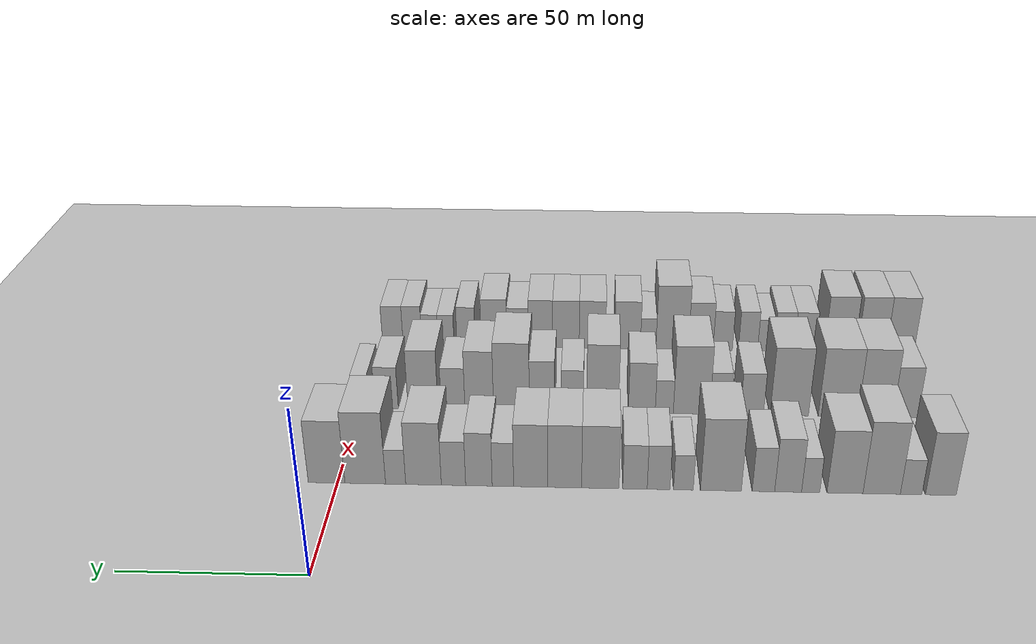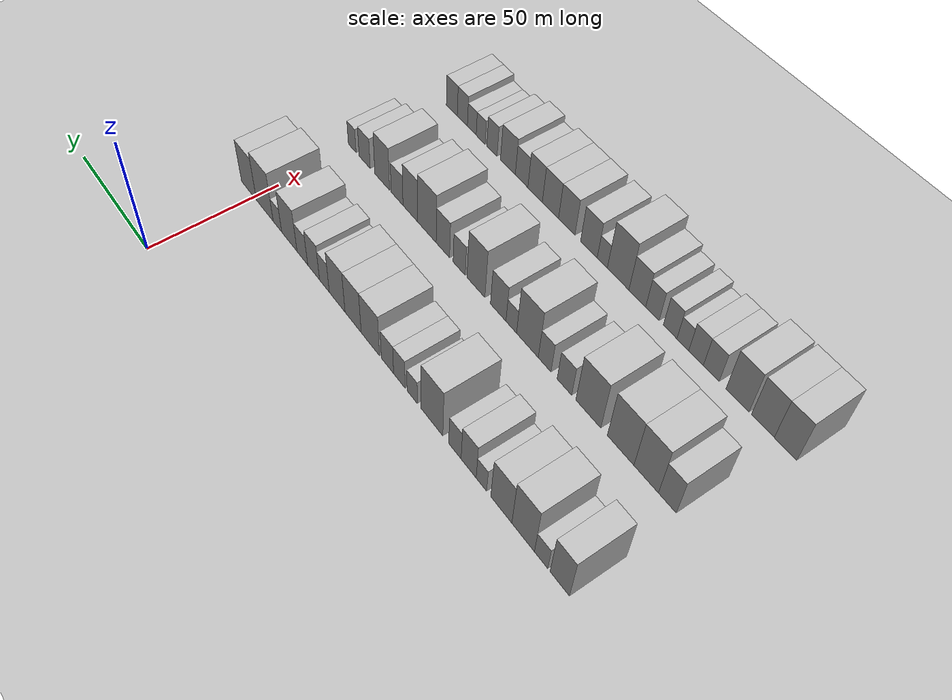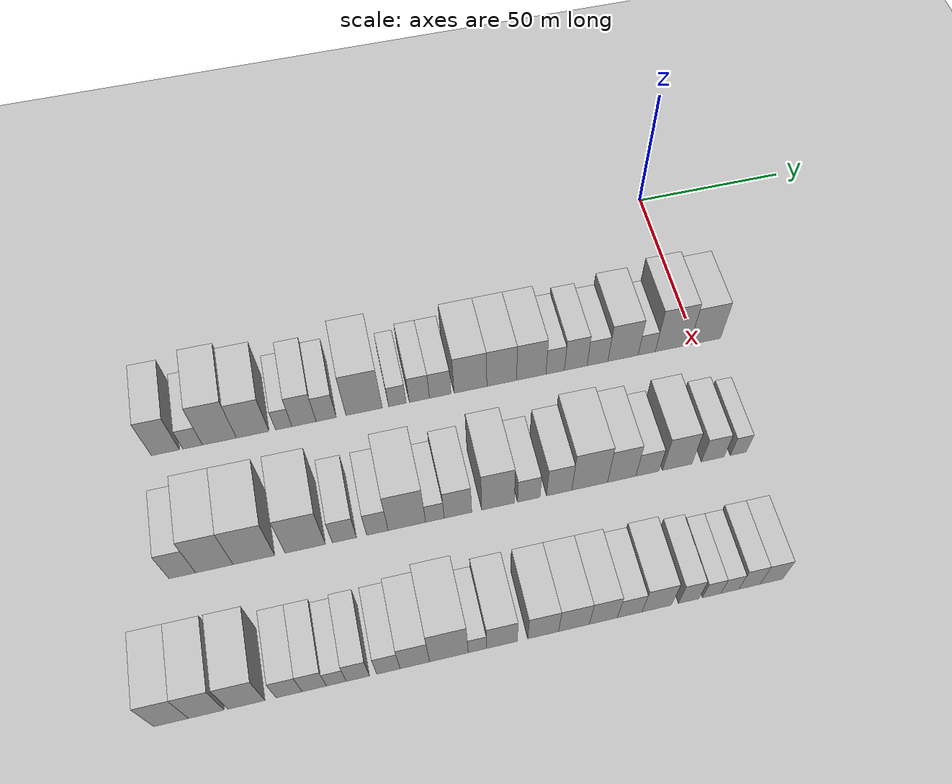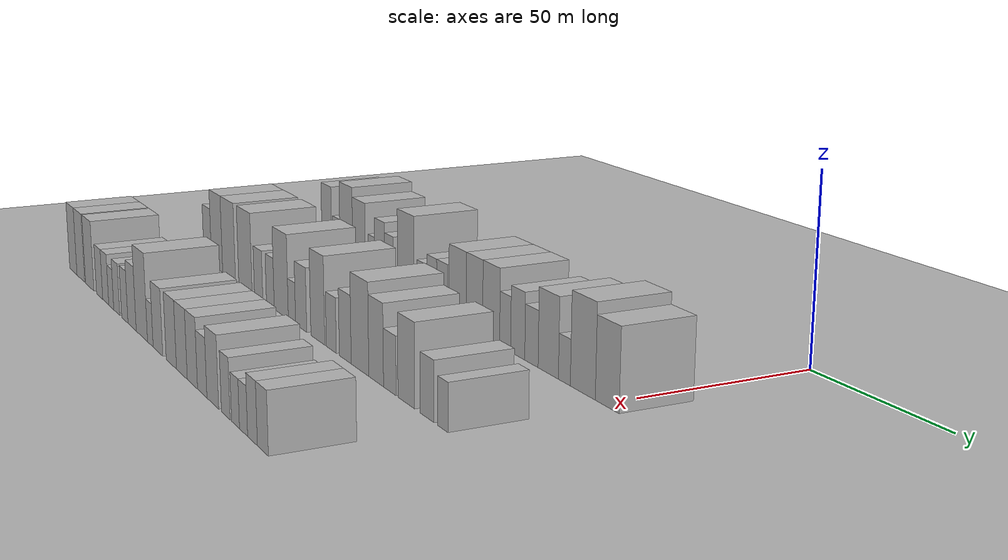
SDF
<sdf version="1.6">
 <world name="default">
  <include><name>ground_plane_1</name><uri>model://HANNAS_ground_plane</uri></include>
  <include>
   <name>ground_plane_2</name>
   <uri>model://HANNAS_ground_plane</uri>
   <pose>100 0 0  0 0 0</pose>
  </include>
  <model name="building_21">
   <static>1</static>
   <pose>50.0000 -168.3030 0 0.000000 0.000000 0.000000</pose>
   <link name="link">
    <pose>0 0 10.50 0 0 0</pose>
    <collision name="collision"><geometry><box><size>20.0000 8.4436 21.0000</size></box></geometry></collision>
    <visual name="visual">
     <cast_shadows>0</cast_shadows>
     <geometry><box><size>20.0000 8.4436 21.0000</size></box></geometry>
     <material>
      <script>
       <uri>model://HANNAS_wall/materials/scripts</uri>
       <uri>model://HANNAS_wall/materials/textures</uri>
       <name>vrc/HANNAS_wall</name>
      </script>
     </material>
    </visual>
   </link>
  </model>
  <model name="building_22">
   <static>1</static>
   <pose>50.0000 -160.1212 0 0.000000 0.000000 0.000000</pose>
   <link name="link">
    <pose>0 0 6.00 0 0 0</pose>
    <collision name="collision"><geometry><box><size>20.0000 5.9200 12.0000</size></box></geometry></collision>
    <visual name="visual">
     <cast_shadows>0</cast_shadows>
     <geometry><box><size>20.0000 5.9200 12.0000</size></box></geometry>
     <material>
      <script>
       <uri>model://HANNAS_wall/materials/scripts</uri>
       <uri>model://HANNAS_wall/materials/textures</uri>
       <name>vrc/HANNAS_wall</name>
      </script>
     </material>
    </visual>
   </link>
  </model>
  <model name="building_23">
   <static>1</static>
   <pose>50.0000 -152.0052 0 0.000000 0.000000 0.000000</pose>
   <link name="link">
    <pose>0 0 12.00 0 0 0</pose>
    <collision name="collision"><geometry><box><size>20.0000 10.3118 24.0000</size></box></geometry></collision>
    <visual name="visual">
     <cast_shadows>0</cast_shadows>
     <geometry><box><size>20.0000 10.3118 24.0000</size></box></geometry>
     <material>
      <script>
       <uri>model://HANNAS_wall/materials/scripts</uri>
       <uri>model://HANNAS_wall/materials/textures</uri>
       <name>vrc/HANNAS_wall</name>
      </script>
     </material>
    </visual>
   </link>
  </model>
  <model name="building_24">
   <static>1</static>
   <pose>50.0000 -141.8778 0 0.000000 0.000000 0.000000</pose>
   <link name="link">
    <pose>0 0 10.50 0 0 0</pose>
    <collision name="collision"><geometry><box><size>20.0000 9.9431 21.0000</size></box></geometry></collision>
    <visual name="visual">
     <cast_shadows>0</cast_shadows>
     <geometry><box><size>20.0000 9.9431 21.0000</size></box></geometry>
     <material>
      <script>
       <uri>model://HANNAS_wall/materials/scripts</uri>
       <uri>model://HANNAS_wall/materials/textures</uri>
       <name>vrc/HANNAS_wall</name>
      </script>
     </material>
    </visual>
   </link>
  </model>
  <model name="building_25">
   <static>1</static>
   <pose>50.0000 -132.3849 0 0.000000 0.000000 0.000000</pose>
   <link name="link">
    <pose>0 0 6.00 0 0 0</pose>
    <collision name="collision"><geometry><box><size>20.0000 5.0427 12.0000</size></box></geometry></collision>
    <visual name="visual">
     <cast_shadows>0</cast_shadows>
     <geometry><box><size>20.0000 5.0427 12.0000</size></box></geometry>
     <material>
      <script>
       <uri>model://HANNAS_wall/materials/scripts</uri>
       <uri>model://HANNAS_wall/materials/textures</uri>
       <name>vrc/HANNAS_wall</name>
      </script>
     </material>
    </visual>
   </link>
  </model>
  <model name="building_26">
   <static>1</static>
   <pose>50.0000 -126.1405 0 0.000000 0.000000 0.000000</pose>
   <link name="link">
    <pose>0 0 9.00 0 0 0</pose>
    <collision name="collision"><geometry><box><size>20.0000 7.4460 18.0000</size></box></geometry></collision>
    <visual name="visual">
     <cast_shadows>0</cast_shadows>
     <geometry><box><size>20.0000 7.4460 18.0000</size></box></geometry>
     <material>
      <script>
       <uri>model://HANNAS_wall/materials/scripts</uri>
       <uri>model://HANNAS_wall/materials/textures</uri>
       <name>vrc/HANNAS_wall</name>
      </script>
     </material>
    </visual>
   </link>
  </model>
  <model name="building_27">
   <static>1</static>
   <pose>50.0000 -119.2987 0 0.000000 0.000000 0.000000</pose>
   <link name="link">
    <pose>0 0 7.50 0 0 0</pose>
    <collision name="collision"><geometry><box><size>20.0000 6.2375 15.0000</size></box></geometry></collision>
    <visual name="visual">
     <cast_shadows>0</cast_shadows>
     <geometry><box><size>20.0000 6.2375 15.0000</size></box></geometry>
     <material>
      <script>
       <uri>model://HANNAS_wall/materials/scripts</uri>
       <uri>model://HANNAS_wall/materials/textures</uri>
       <name>vrc/HANNAS_wall</name>
      </script>
     </material>
    </visual>
   </link>
  </model>
  <model name="building_28">
   <static>1</static>
   <pose>50.0000 -107.4971 0 0.000000 0.000000 0.000000</pose>
   <link name="link">
    <pose>0 0 12.00 0 0 0</pose>
    <collision name="collision"><geometry><box><size>20.0000 11.3657 24.0000</size></box></geometry></collision>
    <visual name="visual">
     <cast_shadows>0</cast_shadows>
     <geometry><box><size>20.0000 11.3657 24.0000</size></box></geometry>
     <material>
      <script>
       <uri>model://HANNAS_wall/materials/scripts</uri>
       <uri>model://HANNAS_wall/materials/textures</uri>
       <name>vrc/HANNAS_wall</name>
      </script>
     </material>
    </visual>
   </link>
  </model>
  <model name="building_29">
   <static>1</static>
   <pose>50.0000 -97.0648 0 0.000000 0.000000 0.000000</pose>
   <link name="link">
    <pose>0 0 6.00 0 0 0</pose>
    <collision name="collision"><geometry><box><size>20.0000 5.4989 12.0000</size></box></geometry></collision>
    <visual name="visual">
     <cast_shadows>0</cast_shadows>
     <geometry><box><size>20.0000 5.4989 12.0000</size></box></geometry>
     <material>
      <script>
       <uri>model://HANNAS_wall/materials/scripts</uri>
       <uri>model://HANNAS_wall/materials/textures</uri>
       <name>vrc/HANNAS_wall</name>
      </script>
     </material>
    </visual>
   </link>
  </model>
  <model name="building_30">
   <static>1</static>
   <pose>50.0000 -90.1429 0 0.000000 0.000000 0.000000</pose>
   <link name="link">
    <pose>0 0 7.50 0 0 0</pose>
    <collision name="collision"><geometry><box><size>20.0000 6.3448 15.0000</size></box></geometry></collision>
    <visual name="visual">
     <cast_shadows>0</cast_shadows>
     <geometry><box><size>20.0000 6.3448 15.0000</size></box></geometry>
     <material>
      <script>
       <uri>model://HANNAS_wall/materials/scripts</uri>
       <uri>model://HANNAS_wall/materials/textures</uri>
       <name>vrc/HANNAS_wall</name>
      </script>
     </material>
    </visual>
   </link>
  </model>
  <model name="building_31">
   <static>1</static>
   <pose>50.0000 -83.5519 0 0.000000 0.000000 0.000000</pose>
   <link name="link">
    <pose>0 0 7.50 0 0 0</pose>
    <collision name="collision"><geometry><box><size>20.0000 6.8373 15.0000</size></box></geometry></collision>
    <visual name="visual">
     <cast_shadows>0</cast_shadows>
     <geometry><box><size>20.0000 6.8373 15.0000</size></box></geometry>
     <material>
      <script>
       <uri>model://HANNAS_wall/materials/scripts</uri>
       <uri>model://HANNAS_wall/materials/textures</uri>
       <name>vrc/HANNAS_wall</name>
      </script>
     </material>
    </visual>
   </link>
  </model>
  <model name="building_32">
   <static>1</static>
   <pose>50.0000 -73.8972 0 0.000000 0.000000 0.000000</pose>
   <link name="link">
    <pose>0 0 10.50 0 0 0</pose>
    <collision name="collision"><geometry><box><size>20.0000 10.4721 21.0000</size></box></geometry></collision>
    <visual name="visual">
     <cast_shadows>0</cast_shadows>
     <geometry><box><size>20.0000 10.4721 21.0000</size></box></geometry>
     <material>
      <script>
       <uri>model://HANNAS_wall/materials/scripts</uri>
       <uri>model://HANNAS_wall/materials/textures</uri>
       <name>vrc/HANNAS_wall</name>
      </script>
     </material>
    </visual>
   </link>
  </model>
  <model name="building_33">
   <static>1</static>
   <pose>50.0000 -63.8988 0 0.000000 0.000000 0.000000</pose>
   <link name="link">
    <pose>0 0 10.50 0 0 0</pose>
    <collision name="collision"><geometry><box><size>20.0000 9.5246 21.0000</size></box></geometry></collision>
    <visual name="visual">
     <cast_shadows>0</cast_shadows>
     <geometry><box><size>20.0000 9.5246 21.0000</size></box></geometry>
     <material>
      <script>
       <uri>model://HANNAS_wall/materials/scripts</uri>
       <uri>model://HANNAS_wall/materials/textures</uri>
       <name>vrc/HANNAS_wall</name>
      </script>
     </material>
    </visual>
   </link>
  </model>
  <model name="building_34">
   <static>1</static>
   <pose>50.0000 -54.3746 0 0.000000 0.000000 0.000000</pose>
   <link name="link">
    <pose>0 0 10.50 0 0 0</pose>
    <collision name="collision"><geometry><box><size>20.0000 9.5240 21.0000</size></box></geometry></collision>
    <visual name="visual">
     <cast_shadows>0</cast_shadows>
     <geometry><box><size>20.0000 9.5240 21.0000</size></box></geometry>
     <material>
      <script>
       <uri>model://HANNAS_wall/materials/scripts</uri>
       <uri>model://HANNAS_wall/materials/textures</uri>
       <name>vrc/HANNAS_wall</name>
      </script>
     </material>
    </visual>
   </link>
  </model>
  <model name="building_35">
   <static>1</static>
   <pose>50.0000 -46.6111 0 0.000000 0.000000 0.000000</pose>
   <link name="link">
    <pose>0 0 7.50 0 0 0</pose>
    <collision name="collision"><geometry><box><size>20.0000 6.0030 15.0000</size></box></geometry></collision>
    <visual name="visual">
     <cast_shadows>0</cast_shadows>
     <geometry><box><size>20.0000 6.0030 15.0000</size></box></geometry>
     <material>
      <script>
       <uri>model://HANNAS_wall/materials/scripts</uri>
       <uri>model://HANNAS_wall/materials/textures</uri>
       <name>vrc/HANNAS_wall</name>
      </script>
     </material>
    </visual>
   </link>
  </model>
  <model name="building_36">
   <static>1</static>
   <pose>50.0000 -39.8862 0 0.000000 0.000000 0.000000</pose>
   <link name="link">
    <pose>0 0 9.00 0 0 0</pose>
    <collision name="collision"><geometry><box><size>20.0000 7.4467 18.0000</size></box></geometry></collision>
    <visual name="visual">
     <cast_shadows>0</cast_shadows>
     <geometry><box><size>20.0000 7.4467 18.0000</size></box></geometry>
     <material>
      <script>
       <uri>model://HANNAS_wall/materials/scripts</uri>
       <uri>model://HANNAS_wall/materials/textures</uri>
       <name>vrc/HANNAS_wall</name>
      </script>
     </material>
    </visual>
   </link>
  </model>
  <model name="building_37">
   <static>1</static>
   <pose>50.0000 -32.7455 0 0.000000 0.000000 0.000000</pose>
   <link name="link">
    <pose>0 0 7.50 0 0 0</pose>
    <collision name="collision"><geometry><box><size>20.0000 6.8346 15.0000</size></box></geometry></collision>
    <visual name="visual">
     <cast_shadows>0</cast_shadows>
     <geometry><box><size>20.0000 6.8346 15.0000</size></box></geometry>
     <material>
      <script>
       <uri>model://HANNAS_wall/materials/scripts</uri>
       <uri>model://HANNAS_wall/materials/textures</uri>
       <name>vrc/HANNAS_wall</name>
      </script>
     </material>
    </visual>
   </link>
  </model>
  <model name="building_38">
   <static>1</static>
   <pose>50.0000 -24.3116 0 0.000000 0.000000 0.000000</pose>
   <link name="link">
    <pose>0 0 10.50 0 0 0</pose>
    <collision name="collision"><geometry><box><size>20.0000 10.0333 21.0000</size></box></geometry></collision>
    <visual name="visual">
     <cast_shadows>0</cast_shadows>
     <geometry><box><size>20.0000 10.0333 21.0000</size></box></geometry>
     <material>
      <script>
       <uri>model://HANNAS_wall/materials/scripts</uri>
       <uri>model://HANNAS_wall/materials/textures</uri>
       <name>vrc/HANNAS_wall</name>
      </script>
     </material>
    </visual>
   </link>
  </model>
  <model name="building_39">
   <static>1</static>
   <pose>50.0000 -16.4530 0 0.000000 0.000000 0.000000</pose>
   <link name="link">
    <pose>0 0 6.00 0 0 0</pose>
    <collision name="collision"><geometry><box><size>20.0000 5.6837 12.0000</size></box></geometry></collision>
    <visual name="visual">
     <cast_shadows>0</cast_shadows>
     <geometry><box><size>20.0000 5.6837 12.0000</size></box></geometry>
     <material>
      <script>
       <uri>model://HANNAS_wall/materials/scripts</uri>
       <uri>model://HANNAS_wall/materials/textures</uri>
       <name>vrc/HANNAS_wall</name>
      </script>
     </material>
    </visual>
   </link>
  </model>
  <model name="building_40">
   <static>1</static>
   <pose>50.0000 -7.8787 0 0.000000 0.000000 0.000000</pose>
   <link name="link">
    <pose>0 0 12.00 0 0 0</pose>
    <collision name="collision"><geometry><box><size>20.0000 11.4650 24.0000</size></box></geometry></collision>
    <visual name="visual">
     <cast_shadows>0</cast_shadows>
     <geometry><box><size>20.0000 11.4650 24.0000</size></box></geometry>
     <material>
      <script>
       <uri>model://HANNAS_wall/materials/scripts</uri>
       <uri>model://HANNAS_wall/materials/textures</uri>
       <name>vrc/HANNAS_wall</name>
      </script>
     </material>
    </visual>
   </link>
  </model>
  <model name="building_41">
   <static>1</static>
   <pose>50.0000 3.0513 0 0.000000 0.000000 0.000000</pose>
   <link name="link">
    <pose>0 0 10.50 0 0 0</pose>
    <collision name="collision"><geometry><box><size>20.0000 10.3950 21.0000</size></box></geometry></collision>
    <visual name="visual">
     <cast_shadows>0</cast_shadows>
     <geometry><box><size>20.0000 10.3950 21.0000</size></box></geometry>
     <material>
      <script>
       <uri>model://HANNAS_wall/materials/scripts</uri>
       <uri>model://HANNAS_wall/materials/textures</uri>
       <name>vrc/HANNAS_wall</name>
      </script>
     </material>
    </visual>
   </link>
  </model>
  <model name="building_99">
   <static>1</static>
   <pose>90.0000 -166.6903 0 0.000000 0.000000 0.000000</pose>
   <link name="link">
    <pose>0 0 9.00 0 0 0</pose>
    <collision name="collision"><geometry><box><size>20.0000 7.5536 18.0000</size></box></geometry></collision>
    <visual name="visual">
     <cast_shadows>0</cast_shadows>
     <geometry><box><size>20.0000 7.5536 18.0000</size></box></geometry>
     <material>
      <script>
       <uri>model://HANNAS_wall/materials/scripts</uri>
       <uri>model://HANNAS_wall/materials/textures</uri>
       <name>vrc/HANNAS_wall</name>
      </script>
     </material>
    </visual>
   </link>
  </model>
  <model name="building_100">
   <static>1</static>
   <pose>90.0000 -157.5940 0 0.000000 0.000000 0.000000</pose>
   <link name="link">
    <pose>0 0 12.00 0 0 0</pose>
    <collision name="collision"><geometry><box><size>20.0000 10.6390 24.0000</size></box></geometry></collision>
    <visual name="visual">
     <cast_shadows>0</cast_shadows>
     <geometry><box><size>20.0000 10.6390 24.0000</size></box></geometry>
     <material>
      <script>
       <uri>model://HANNAS_wall/materials/scripts</uri>
       <uri>model://HANNAS_wall/materials/textures</uri>
       <name>vrc/HANNAS_wall</name>
      </script>
     </material>
    </visual>
   </link>
  </model>
  <model name="building_101">
   <static>1</static>
   <pose>90.0000 -146.3129 0 0.000000 0.000000 0.000000</pose>
   <link name="link">
    <pose>0 0 12.00 0 0 0</pose>
    <collision name="collision"><geometry><box><size>20.0000 11.9232 24.0000</size></box></geometry></collision>
    <visual name="visual">
     <cast_shadows>0</cast_shadows>
     <geometry><box><size>20.0000 11.9232 24.0000</size></box></geometry>
     <material>
      <script>
       <uri>model://HANNAS_wall/materials/scripts</uri>
       <uri>model://HANNAS_wall/materials/textures</uri>
       <name>vrc/HANNAS_wall</name>
      </script>
     </material>
    </visual>
   </link>
  </model>
  <model name="building_102">
   <static>1</static>
   <pose>90.0000 -131.5078 0 0.000000 0.000000 0.000000</pose>
   <link name="link">
    <pose>0 0 12.00 0 0 0</pose>
    <collision name="collision"><geometry><box><size>20.0000 11.6871 24.0000</size></box></geometry></collision>
    <visual name="visual">
     <cast_shadows>0</cast_shadows>
     <geometry><box><size>20.0000 11.6871 24.0000</size></box></geometry>
     <material>
      <script>
       <uri>model://HANNAS_wall/materials/scripts</uri>
       <uri>model://HANNAS_wall/materials/textures</uri>
       <name>vrc/HANNAS_wall</name>
      </script>
     </material>
    </visual>
   </link>
  </model>
  <model name="building_103">
   <static>1</static>
   <pose>90.0000 -120.1401 0 0.000000 0.000000 0.000000</pose>
   <link name="link">
    <pose>0 0 7.50 0 0 0</pose>
    <collision name="collision"><geometry><box><size>20.0000 7.0484 15.0000</size></box></geometry></collision>
    <visual name="visual">
     <cast_shadows>0</cast_shadows>
     <geometry><box><size>20.0000 7.0484 15.0000</size></box></geometry>
     <material>
      <script>
       <uri>model://HANNAS_wall/materials/scripts</uri>
       <uri>model://HANNAS_wall/materials/textures</uri>
       <name>vrc/HANNAS_wall</name>
      </script>
     </material>
    </visual>
   </link>
  </model>
  <model name="building_104">
   <static>1</static>
   <pose>90.0000 -110.4509 0 0.000000 0.000000 0.000000</pose>
   <link name="link">
    <pose>0 0 7.50 0 0 0</pose>
    <collision name="collision"><geometry><box><size>20.0000 6.3299 15.0000</size></box></geometry></collision>
    <visual name="visual">
     <cast_shadows>0</cast_shadows>
     <geometry><box><size>20.0000 6.3299 15.0000</size></box></geometry>
     <material>
      <script>
       <uri>model://HANNAS_wall/materials/scripts</uri>
       <uri>model://HANNAS_wall/materials/textures</uri>
       <name>vrc/HANNAS_wall</name>
      </script>
     </material>
    </visual>
   </link>
  </model>
  <model name="building_105">
   <static>1</static>
   <pose>90.0000 -101.7411 0 0.000000 0.000000 0.000000</pose>
   <link name="link">
    <pose>0 0 12.00 0 0 0</pose>
    <collision name="collision"><geometry><box><size>20.0000 11.0897 24.0000</size></box></geometry></collision>
    <visual name="visual">
     <cast_shadows>0</cast_shadows>
     <geometry><box><size>20.0000 11.0897 24.0000</size></box></geometry>
     <material>
      <script>
       <uri>model://HANNAS_wall/materials/scripts</uri>
       <uri>model://HANNAS_wall/materials/textures</uri>
       <name>vrc/HANNAS_wall</name>
      </script>
     </material>
    </visual>
   </link>
  </model>
  <model name="building_106">
   <static>1</static>
   <pose>90.0000 -93.4350 0 0.000000 0.000000 0.000000</pose>
   <link name="link">
    <pose>0 0 6.00 0 0 0</pose>
    <collision name="collision"><geometry><box><size>20.0000 5.5224 12.0000</size></box></geometry></collision>
    <visual name="visual">
     <cast_shadows>0</cast_shadows>
     <geometry><box><size>20.0000 5.5224 12.0000</size></box></geometry>
     <material>
      <script>
       <uri>model://HANNAS_wall/materials/scripts</uri>
       <uri>model://HANNAS_wall/materials/textures</uri>
       <name>vrc/HANNAS_wall</name>
      </script>
     </material>
    </visual>
   </link>
  </model>
  <model name="building_107">
   <static>1</static>
   <pose>90.0000 -86.5600 0 0.000000 0.000000 0.000000</pose>
   <link name="link">
    <pose>0 0 9.00 0 0 0</pose>
    <collision name="collision"><geometry><box><size>20.0000 8.2277 18.0000</size></box></geometry></collision>
    <visual name="visual">
     <cast_shadows>0</cast_shadows>
     <geometry><box><size>20.0000 8.2277 18.0000</size></box></geometry>
     <material>
      <script>
       <uri>model://HANNAS_wall/materials/scripts</uri>
       <uri>model://HANNAS_wall/materials/textures</uri>
       <name>vrc/HANNAS_wall</name>
      </script>
     </material>
    </visual>
   </link>
  </model>
  <model name="building_108">
   <static>1</static>
   <pose>90.0000 -74.5335 0 0.000000 0.000000 0.000000</pose>
   <link name="link">
    <pose>0 0 12.00 0 0 0</pose>
    <collision name="collision"><geometry><box><size>20.0000 9.8252 24.0000</size></box></geometry></collision>
    <visual name="visual">
     <cast_shadows>0</cast_shadows>
     <geometry><box><size>20.0000 9.8252 24.0000</size></box></geometry>
     <material>
      <script>
       <uri>model://HANNAS_wall/materials/scripts</uri>
       <uri>model://HANNAS_wall/materials/textures</uri>
       <name>vrc/HANNAS_wall</name>
      </script>
     </material>
    </visual>
   </link>
  </model>
  <model name="building_109">
   <static>1</static>
   <pose>90.0000 -65.2203 0 0.000000 0.000000 0.000000</pose>
   <link name="link">
    <pose>0 0 7.50 0 0 0</pose>
    <collision name="collision"><geometry><box><size>20.0000 6.8013 15.0000</size></box></geometry></collision>
    <visual name="visual">
     <cast_shadows>0</cast_shadows>
     <geometry><box><size>20.0000 6.8013 15.0000</size></box></geometry>
     <material>
      <script>
       <uri>model://HANNAS_wall/materials/scripts</uri>
       <uri>model://HANNAS_wall/materials/textures</uri>
       <name>vrc/HANNAS_wall</name>
      </script>
     </material>
    </visual>
   </link>
  </model>
  <model name="building_110">
   <static>1</static>
   <pose>90.0000 -55.9528 0 0.000000 0.000000 0.000000</pose>
   <link name="link">
    <pose>0 0 9.00 0 0 0</pose>
    <collision name="collision"><geometry><box><size>20.0000 7.7336 18.0000</size></box></geometry></collision>
    <visual name="visual">
     <cast_shadows>0</cast_shadows>
     <geometry><box><size>20.0000 7.7336 18.0000</size></box></geometry>
     <material>
      <script>
       <uri>model://HANNAS_wall/materials/scripts</uri>
       <uri>model://HANNAS_wall/materials/textures</uri>
       <name>vrc/HANNAS_wall</name>
      </script>
     </material>
    </visual>
   </link>
  </model>
  <model name="building_111">
   <static>1</static>
   <pose>90.0000 -46.5802 0 0.000000 0.000000 0.000000</pose>
   <link name="link">
    <pose>0 0 12.00 0 0 0</pose>
    <collision name="collision"><geometry><box><size>20.0000 11.0116 24.0000</size></box></geometry></collision>
    <visual name="visual">
     <cast_shadows>0</cast_shadows>
     <geometry><box><size>20.0000 11.0116 24.0000</size></box></geometry>
     <material>
      <script>
       <uri>model://HANNAS_wall/materials/scripts</uri>
       <uri>model://HANNAS_wall/materials/textures</uri>
       <name>vrc/HANNAS_wall</name>
      </script>
     </material>
    </visual>
   </link>
  </model>
  <model name="building_112">
   <static>1</static>
   <pose>90.0000 -36.6796 0 0.000000 0.000000 0.000000</pose>
   <link name="link">
    <pose>0 0 10.50 0 0 0</pose>
    <collision name="collision"><geometry><box><size>20.0000 8.7895 21.0000</size></box></geometry></collision>
    <visual name="visual">
     <cast_shadows>0</cast_shadows>
     <geometry><box><size>20.0000 8.7895 21.0000</size></box></geometry>
     <material>
      <script>
       <uri>model://HANNAS_wall/materials/scripts</uri>
       <uri>model://HANNAS_wall/materials/textures</uri>
       <name>vrc/HANNAS_wall</name>
      </script>
     </material>
    </visual>
   </link>
  </model>
  <model name="building_113">
   <static>1</static>
   <pose>90.0000 -28.6344 0 0.000000 0.000000 0.000000</pose>
   <link name="link">
    <pose>0 0 7.50 0 0 0</pose>
    <collision name="collision"><geometry><box><size>20.0000 7.3010 15.0000</size></box></geometry></collision>
    <visual name="visual">
     <cast_shadows>0</cast_shadows>
     <geometry><box><size>20.0000 7.3010 15.0000</size></box></geometry>
     <material>
      <script>
       <uri>model://HANNAS_wall/materials/scripts</uri>
       <uri>model://HANNAS_wall/materials/textures</uri>
       <name>vrc/HANNAS_wall</name>
      </script>
     </material>
    </visual>
   </link>
  </model>
  <model name="building_114">
   <static>1</static>
   <pose>90.0000 -19.3513 0 0.000000 0.000000 0.000000</pose>
   <link name="link">
    <pose>0 0 10.50 0 0 0</pose>
    <collision name="collision"><geometry><box><size>20.0000 9.2651 21.0000</size></box></geometry></collision>
    <visual name="visual">
     <cast_shadows>0</cast_shadows>
     <geometry><box><size>20.0000 9.2651 21.0000</size></box></geometry>
     <material>
      <script>
       <uri>model://HANNAS_wall/materials/scripts</uri>
       <uri>model://HANNAS_wall/materials/textures</uri>
       <name>vrc/HANNAS_wall</name>
      </script>
     </material>
    </visual>
   </link>
  </model>
  <model name="building_115">
   <static>1</static>
   <pose>90.0000 -8.1281 0 0.000000 0.000000 0.000000</pose>
   <link name="link">
    <pose>0 0 7.50 0 0 0</pose>
    <collision name="collision"><geometry><box><size>20.0000 7.1813 15.0000</size></box></geometry></collision>
    <visual name="visual">
     <cast_shadows>0</cast_shadows>
     <geometry><box><size>20.0000 7.1813 15.0000</size></box></geometry>
     <material>
      <script>
       <uri>model://HANNAS_wall/materials/scripts</uri>
       <uri>model://HANNAS_wall/materials/textures</uri>
       <name>vrc/HANNAS_wall</name>
      </script>
     </material>
    </visual>
   </link>
  </model>
  <model name="building_116">
   <static>1</static>
   <pose>90.0000 0.0035 0 0.000000 0.000000 0.000000</pose>
   <link name="link">
    <pose>0 0 6.00 0 0 0</pose>
    <collision name="collision"><geometry><box><size>20.0000 5.0818 12.0000</size></box></geometry></collision>
    <visual name="visual">
     <cast_shadows>0</cast_shadows>
     <geometry><box><size>20.0000 5.0818 12.0000</size></box></geometry>
     <material>
      <script>
       <uri>model://HANNAS_wall/materials/scripts</uri>
       <uri>model://HANNAS_wall/materials/textures</uri>
       <name>vrc/HANNAS_wall</name>
      </script>
     </material>
    </visual>
   </link>
  </model>
  <model name="building_181">
   <static>1</static>
   <pose>130.0000 -173.1147 0 0.000000 0.000000 0.000000</pose>
   <link name="link">
    <pose>0 0 10.50 0 0 0</pose>
    <collision name="collision"><geometry><box><size>20.0000 9.1487 21.0000</size></box></geometry></collision>
    <visual name="visual">
     <cast_shadows>0</cast_shadows>
     <geometry><box><size>20.0000 9.1487 21.0000</size></box></geometry>
     <material>
      <script>
       <uri>model://HANNAS_wall/materials/scripts</uri>
       <uri>model://HANNAS_wall/materials/textures</uri>
       <name>vrc/HANNAS_wall</name>
      </script>
     </material>
    </visual>
   </link>
  </model>
  <model name="building_182">
   <static>1</static>
   <pose>130.0000 -163.7935 0 0.000000 0.000000 0.000000</pose>
   <link name="link">
    <pose>0 0 10.50 0 0 0</pose>
    <collision name="collision"><geometry><box><size>20.0000 9.4935 21.0000</size></box></geometry></collision>
    <visual name="visual">
     <cast_shadows>0</cast_shadows>
     <geometry><box><size>20.0000 9.4935 21.0000</size></box></geometry>
     <material>
      <script>
       <uri>model://HANNAS_wall/materials/scripts</uri>
       <uri>model://HANNAS_wall/materials/textures</uri>
       <name>vrc/HANNAS_wall</name>
      </script>
     </material>
    </visual>
   </link>
  </model>
  <model name="building_183">
   <static>1</static>
   <pose>130.0000 -153.1024 0 0.000000 0.000000 0.000000</pose>
   <link name="link">
    <pose>0 0 10.50 0 0 0</pose>
    <collision name="collision"><geometry><box><size>20.0000 9.8887 21.0000</size></box></geometry></collision>
    <visual name="visual">
     <cast_shadows>0</cast_shadows>
     <geometry><box><size>20.0000 9.8887 21.0000</size></box></geometry>
     <material>
      <script>
       <uri>model://HANNAS_wall/materials/scripts</uri>
       <uri>model://HANNAS_wall/materials/textures</uri>
       <name>vrc/HANNAS_wall</name>
      </script>
     </material>
    </visual>
   </link>
  </model>
  <model name="building_184">
   <static>1</static>
   <pose>130.0000 -141.6416 0 0.000000 0.000000 0.000000</pose>
   <link name="link">
    <pose>0 0 7.50 0 0 0</pose>
    <collision name="collision"><geometry><box><size>20.0000 7.0329 15.0000</size></box></geometry></collision>
    <visual name="visual">
     <cast_shadows>0</cast_shadows>
     <geometry><box><size>20.0000 7.0329 15.0000</size></box></geometry>
     <material>
      <script>
       <uri>model://HANNAS_wall/materials/scripts</uri>
       <uri>model://HANNAS_wall/materials/textures</uri>
       <name>vrc/HANNAS_wall</name>
      </script>
     </material>
    </visual>
   </link>
  </model>
  <model name="building_185">
   <static>1</static>
   <pose>130.0000 -134.8169 0 0.000000 0.000000 0.000000</pose>
   <link name="link">
    <pose>0 0 7.50 0 0 0</pose>
    <collision name="collision"><geometry><box><size>20.0000 6.6166 15.0000</size></box></geometry></collision>
    <visual name="visual">
     <cast_shadows>0</cast_shadows>
     <geometry><box><size>20.0000 6.6166 15.0000</size></box></geometry>
     <material>
      <script>
       <uri>model://HANNAS_wall/materials/scripts</uri>
       <uri>model://HANNAS_wall/materials/textures</uri>
       <name>vrc/HANNAS_wall</name>
      </script>
     </material>
    </visual>
   </link>
  </model>
  <model name="building_186">
   <static>1</static>
   <pose>130.0000 -128.8051 0 0.000000 0.000000 0.000000</pose>
   <link name="link">
    <pose>0 0 6.00 0 0 0</pose>
    <collision name="collision"><geometry><box><size>20.0000 5.4070 12.0000</size></box></geometry></collision>
    <visual name="visual">
     <cast_shadows>0</cast_shadows>
     <geometry><box><size>20.0000 5.4070 12.0000</size></box></geometry>
     <material>
      <script>
       <uri>model://HANNAS_wall/materials/scripts</uri>
       <uri>model://HANNAS_wall/materials/textures</uri>
       <name>vrc/HANNAS_wall</name>
      </script>
     </material>
    </visual>
   </link>
  </model>
  <model name="building_187">
   <static>1</static>
   <pose>130.0000 -122.9337 0 0.000000 0.000000 0.000000</pose>
   <link name="link">
    <pose>0 0 7.50 0 0 0</pose>
    <collision name="collision"><geometry><box><size>20.0000 6.3358 15.0000</size></box></geometry></collision>
    <visual name="visual">
     <cast_shadows>0</cast_shadows>
     <geometry><box><size>20.0000 6.3358 15.0000</size></box></geometry>
     <material>
      <script>
       <uri>model://HANNAS_wall/materials/scripts</uri>
       <uri>model://HANNAS_wall/materials/textures</uri>
       <name>vrc/HANNAS_wall</name>
      </script>
     </material>
    </visual>
   </link>
  </model>
  <model name="building_188">
   <static>1</static>
   <pose>130.0000 -114.5561 0 0.000000 0.000000 0.000000</pose>
   <link name="link">
    <pose>0 0 7.50 0 0 0</pose>
    <collision name="collision"><geometry><box><size>20.0000 6.4194 15.0000</size></box></geometry></collision>
    <visual name="visual">
     <cast_shadows>0</cast_shadows>
     <geometry><box><size>20.0000 6.4194 15.0000</size></box></geometry>
     <material>
      <script>
       <uri>model://HANNAS_wall/materials/scripts</uri>
       <uri>model://HANNAS_wall/materials/textures</uri>
       <name>vrc/HANNAS_wall</name>
      </script>
     </material>
    </visual>
   </link>
  </model>
  <model name="building_189">
   <static>1</static>
   <pose>130.0000 -107.2570 0 0.000000 0.000000 0.000000</pose>
   <link name="link">
    <pose>0 0 9.00 0 0 0</pose>
    <collision name="collision"><geometry><box><size>20.0000 8.1788 18.0000</size></box></geometry></collision>
    <visual name="visual">
     <cast_shadows>0</cast_shadows>
     <geometry><box><size>20.0000 8.1788 18.0000</size></box></geometry>
     <material>
      <script>
       <uri>model://HANNAS_wall/materials/scripts</uri>
       <uri>model://HANNAS_wall/materials/textures</uri>
       <name>vrc/HANNAS_wall</name>
      </script>
     </material>
    </visual>
   </link>
  </model>
  <model name="building_190">
   <static>1</static>
   <pose>130.0000 -97.7706 0 0.000000 0.000000 0.000000</pose>
   <link name="link">
    <pose>0 0 12.00 0 0 0</pose>
    <collision name="collision"><geometry><box><size>20.0000 10.7940 24.0000</size></box></geometry></collision>
    <visual name="visual">
     <cast_shadows>0</cast_shadows>
     <geometry><box><size>20.0000 10.7940 24.0000</size></box></geometry>
     <material>
      <script>
       <uri>model://HANNAS_wall/materials/scripts</uri>
       <uri>model://HANNAS_wall/materials/textures</uri>
       <name>vrc/HANNAS_wall</name>
      </script>
     </material>
    </visual>
   </link>
  </model>
  <model name="building_191">
   <static>1</static>
   <pose>130.0000 -89.7932 0 0.000000 0.000000 0.000000</pose>
   <link name="link">
    <pose>0 0 6.00 0 0 0</pose>
    <collision name="collision"><geometry><box><size>20.0000 5.1608 12.0000</size></box></geometry></collision>
    <visual name="visual">
     <cast_shadows>0</cast_shadows>
     <geometry><box><size>20.0000 5.1608 12.0000</size></box></geometry>
     <material>
      <script>
       <uri>model://HANNAS_wall/materials/scripts</uri>
       <uri>model://HANNAS_wall/materials/textures</uri>
       <name>vrc/HANNAS_wall</name>
      </script>
     </material>
    </visual>
   </link>
  </model>
  <model name="building_192">
   <static>1</static>
   <pose>130.0000 -82.8956 0 0.000000 0.000000 0.000000</pose>
   <link name="link">
    <pose>0 0 9.00 0 0 0</pose>
    <collision name="collision"><geometry><box><size>20.0000 8.6345 18.0000</size></box></geometry></collision>
    <visual name="visual">
     <cast_shadows>0</cast_shadows>
     <geometry><box><size>20.0000 8.6345 18.0000</size></box></geometry>
     <material>
      <script>
       <uri>model://HANNAS_wall/materials/scripts</uri>
       <uri>model://HANNAS_wall/materials/textures</uri>
       <name>vrc/HANNAS_wall</name>
      </script>
     </material>
    </visual>
   </link>
  </model>
  <model name="building_193">
   <static>1</static>
   <pose>130.0000 -71.1852 0 0.000000 0.000000 0.000000</pose>
   <link name="link">
    <pose>0 0 9.00 0 0 0</pose>
    <collision name="collision"><geometry><box><size>20.0000 8.7862 18.0000</size></box></geometry></collision>
    <visual name="visual">
     <cast_shadows>0</cast_shadows>
     <geometry><box><size>20.0000 8.7862 18.0000</size></box></geometry>
     <material>
      <script>
       <uri>model://HANNAS_wall/materials/scripts</uri>
       <uri>model://HANNAS_wall/materials/textures</uri>
       <name>vrc/HANNAS_wall</name>
      </script>
     </material>
    </visual>
   </link>
  </model>
  <model name="building_194">
   <static>1</static>
   <pose>130.0000 -62.3657 0 0.000000 0.000000 0.000000</pose>
   <link name="link">
    <pose>0 0 9.00 0 0 0</pose>
    <collision name="collision"><geometry><box><size>20.0000 8.8528 18.0000</size></box></geometry></collision>
    <visual name="visual">
     <cast_shadows>0</cast_shadows>
     <geometry><box><size>20.0000 8.8528 18.0000</size></box></geometry>
     <material>
      <script>
       <uri>model://HANNAS_wall/materials/scripts</uri>
       <uri>model://HANNAS_wall/materials/textures</uri>
       <name>vrc/HANNAS_wall</name>
      </script>
     </material>
    </visual>
   </link>
  </model>
  <model name="building_195">
   <static>1</static>
   <pose>130.0000 -53.8906 0 0.000000 0.000000 0.000000</pose>
   <link name="link">
    <pose>0 0 9.00 0 0 0</pose>
    <collision name="collision"><geometry><box><size>20.0000 8.0976 18.0000</size></box></geometry></collision>
    <visual name="visual">
     <cast_shadows>0</cast_shadows>
     <geometry><box><size>20.0000 8.0976 18.0000</size></box></geometry>
     <material>
      <script>
       <uri>model://HANNAS_wall/materials/scripts</uri>
       <uri>model://HANNAS_wall/materials/textures</uri>
       <name>vrc/HANNAS_wall</name>
      </script>
     </material>
    </visual>
   </link>
  </model>
  <model name="building_196">
   <static>1</static>
   <pose>130.0000 -46.2596 0 0.000000 0.000000 0.000000</pose>
   <link name="link">
    <pose>0 0 7.50 0 0 0</pose>
    <collision name="collision"><geometry><box><size>20.0000 7.1642 15.0000</size></box></geometry></collision>
    <visual name="visual">
     <cast_shadows>0</cast_shadows>
     <geometry><box><size>20.0000 7.1642 15.0000</size></box></geometry>
     <material>
      <script>
       <uri>model://HANNAS_wall/materials/scripts</uri>
       <uri>model://HANNAS_wall/materials/textures</uri>
       <name>vrc/HANNAS_wall</name>
      </script>
     </material>
    </visual>
   </link>
  </model>
  <model name="building_197">
   <static>1</static>
   <pose>130.0000 -38.3588 0 0.000000 0.000000 0.000000</pose>
   <link name="link">
    <pose>0 0 9.00 0 0 0</pose>
    <collision name="collision"><geometry><box><size>20.0000 8.6375 18.0000</size></box></geometry></collision>
    <visual name="visual">
     <cast_shadows>0</cast_shadows>
     <geometry><box><size>20.0000 8.6375 18.0000</size></box></geometry>
     <material>
      <script>
       <uri>model://HANNAS_wall/materials/scripts</uri>
       <uri>model://HANNAS_wall/materials/textures</uri>
       <name>vrc/HANNAS_wall</name>
      </script>
     </material>
    </visual>
   </link>
  </model>
  <model name="building_198">
   <static>1</static>
   <pose>130.0000 -28.9939 0 0.000000 0.000000 0.000000</pose>
   <link name="link">
    <pose>0 0 7.50 0 0 0</pose>
    <collision name="collision"><geometry><box><size>20.0000 6.0922 15.0000</size></box></geometry></collision>
    <visual name="visual">
     <cast_shadows>0</cast_shadows>
     <geometry><box><size>20.0000 6.0922 15.0000</size></box></geometry>
     <material>
      <script>
       <uri>model://HANNAS_wall/materials/scripts</uri>
       <uri>model://HANNAS_wall/materials/textures</uri>
       <name>vrc/HANNAS_wall</name>
      </script>
     </material>
    </visual>
   </link>
  </model>
  <model name="building_199">
   <static>1</static>
   <pose>130.0000 -22.2406 0 0.000000 0.000000 0.000000</pose>
   <link name="link">
    <pose>0 0 6.00 0 0 0</pose>
    <collision name="collision"><geometry><box><size>20.0000 5.4146 12.0000</size></box></geometry></collision>
    <visual name="visual">
     <cast_shadows>0</cast_shadows>
     <geometry><box><size>20.0000 5.4146 12.0000</size></box></geometry>
     <material>
      <script>
       <uri>model://HANNAS_wall/materials/scripts</uri>
       <uri>model://HANNAS_wall/materials/textures</uri>
       <name>vrc/HANNAS_wall</name>
      </script>
     </material>
    </visual>
   </link>
  </model>
  <model name="building_200">
   <static>1</static>
   <pose>130.0000 -16.8322 0 0.000000 0.000000 0.000000</pose>
   <link name="link">
    <pose>0 0 6.00 0 0 0</pose>
    <collision name="collision"><geometry><box><size>20.0000 5.4021 12.0000</size></box></geometry></collision>
    <visual name="visual">
     <cast_shadows>0</cast_shadows>
     <geometry><box><size>20.0000 5.4021 12.0000</size></box></geometry>
     <material>
      <script>
       <uri>model://HANNAS_wall/materials/scripts</uri>
       <uri>model://HANNAS_wall/materials/textures</uri>
       <name>vrc/HANNAS_wall</name>
      </script>
     </material>
    </visual>
   </link>
  </model>
  <model name="building_201">
   <static>1</static>
   <pose>130.0000 -10.9844 0 0.000000 0.000000 0.000000</pose>
   <link name="link">
    <pose>0 0 7.50 0 0 0</pose>
    <collision name="collision"><geometry><box><size>20.0000 6.2934 15.0000</size></box></geometry></collision>
    <visual name="visual">
     <cast_shadows>0</cast_shadows>
     <geometry><box><size>20.0000 6.2934 15.0000</size></box></geometry>
     <material>
      <script>
       <uri>model://HANNAS_wall/materials/scripts</uri>
       <uri>model://HANNAS_wall/materials/textures</uri>
       <name>vrc/HANNAS_wall</name>
      </script>
     </material>
    </visual>
   </link>
  </model>
  <model name="building_202">
   <static>1</static>
   <pose>130.0000 -4.4074 0 0.000000 0.000000 0.000000</pose>
   <link name="link">
    <pose>0 0 7.50 0 0 0</pose>
    <collision name="collision"><geometry><box><size>20.0000 6.8606 15.0000</size></box></geometry></collision>
    <visual name="visual">
     <cast_shadows>0</cast_shadows>
     <geometry><box><size>20.0000 6.8606 15.0000</size></box></geometry>
     <material>
      <script>
       <uri>model://HANNAS_wall/materials/scripts</uri>
       <uri>model://HANNAS_wall/materials/textures</uri>
       <name>vrc/HANNAS_wall</name>
      </script>
     </material>
    </visual>
   </link>
  </model>
 </world>
</sdf>
